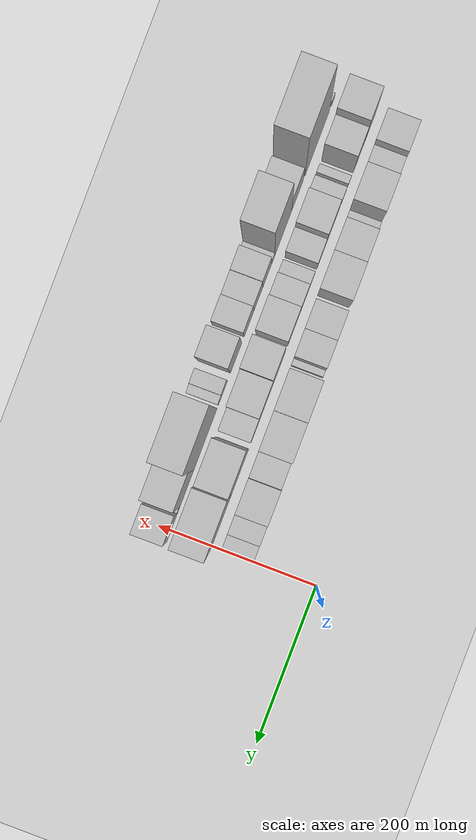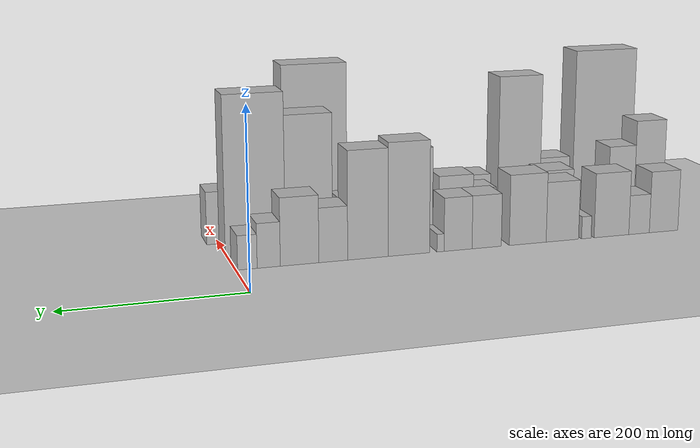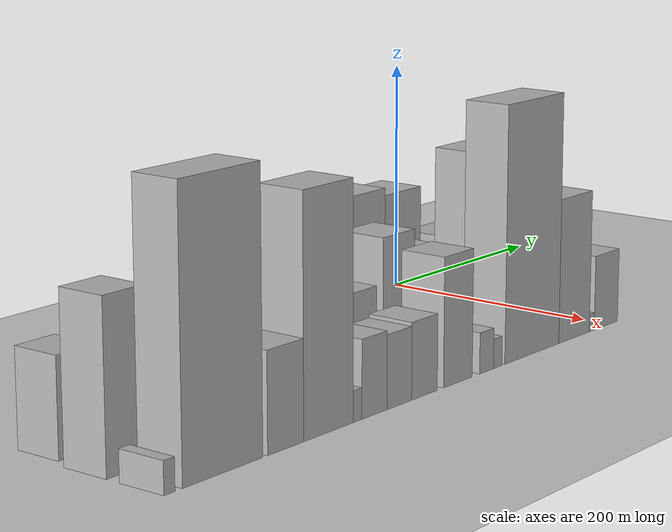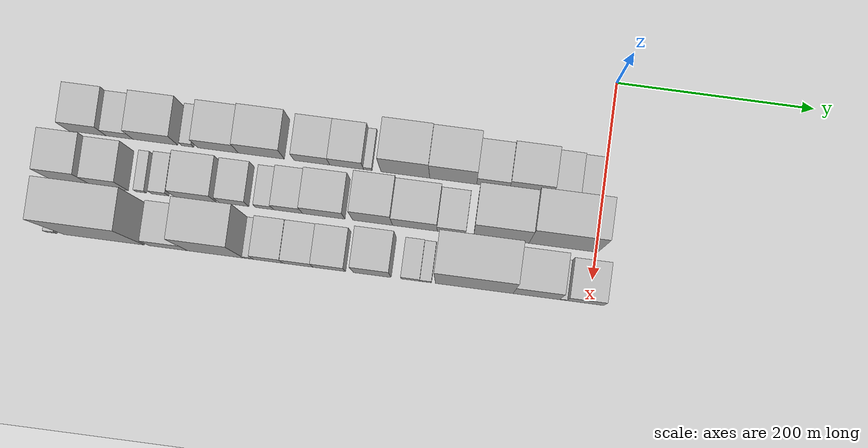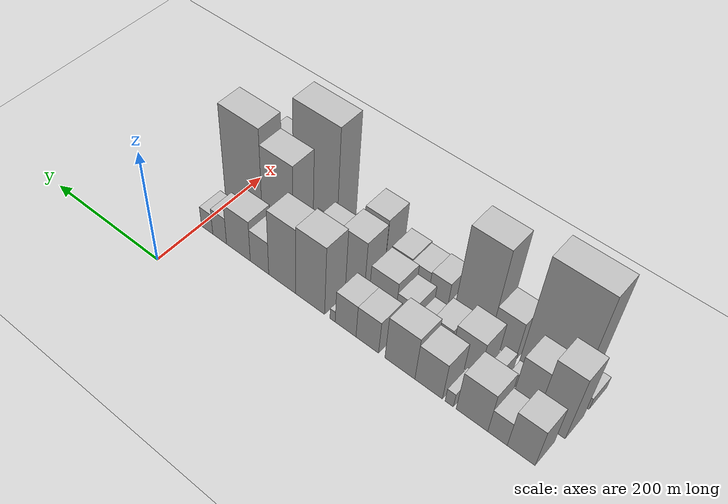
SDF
<sdf version="1.6">
 <world name="default">
  <include><name>ground_plane_1</name><uri>model://HANNAS_ground_plane</uri></include>
  <model name="building_1">
   <static>1</static>
   <pose>100.0000 -521.8874 0 0.000000 0.000000 0.000000</pose>
   <link name="link">
    <pose>0 0 37.50 0 0 0</pose>
    <collision name="collision"><geometry><box><size>40.0000 38.2253 75.0000</size></box></geometry></collision>
    <visual name="visual">
     <cast_shadows>0</cast_shadows>
     <geometry><box><size>40.0000 38.2253 75.0000</size></box></geometry>
     <material>
      <script>
       <uri>model://HANNAS_wall/materials/scripts</uri>
       <uri>model://HANNAS_wall/materials/textures</uri>
       <name>vrc/HANNAS_wall</name>
      </script>
     </material>
    </visual>
   </link>
  </model>
  <model name="building_2">
   <static>1</static>
   <pose>100.0000 -489.1310 0 0.000000 0.000000 0.000000</pose>
   <link name="link">
    <pose>0 0 24.00 0 0 0</pose>
    <collision name="collision"><geometry><box><size>40.0000 27.2876 48.0000</size></box></geometry></collision>
    <visual name="visual">
     <cast_shadows>0</cast_shadows>
     <geometry><box><size>40.0000 27.2876 48.0000</size></box></geometry>
     <material>
      <script>
       <uri>model://HANNAS_wall/materials/scripts</uri>
       <uri>model://HANNAS_wall/materials/textures</uri>
       <name>vrc/HANNAS_wall</name>
      </script>
     </material>
    </visual>
   </link>
  </model>
  <model name="building_3">
   <static>1</static>
   <pose>100.0000 -452.7695 0 0.000000 0.000000 0.000000</pose>
   <link name="link">
    <pose>0 0 39.00 0 0 0</pose>
    <collision name="collision"><geometry><box><size>40.0000 45.4354 78.0000</size></box></geometry></collision>
    <visual name="visual">
     <cast_shadows>0</cast_shadows>
     <geometry><box><size>40.0000 45.4354 78.0000</size></box></geometry>
     <material>
      <script>
       <uri>model://HANNAS_wall/materials/scripts</uri>
       <uri>model://HANNAS_wall/materials/textures</uri>
       <name>vrc/HANNAS_wall</name>
      </script>
     </material>
    </visual>
   </link>
  </model>
  <model name="building_4">
   <static>1</static>
   <pose>100.0000 -419.9362 0 0.000000 0.000000 0.000000</pose>
   <link name="link">
    <pose>0 0 13.50 0 0 0</pose>
    <collision name="collision"><geometry><box><size>40.0000 12.2310 27.0000</size></box></geometry></collision>
    <visual name="visual">
     <cast_shadows>0</cast_shadows>
     <geometry><box><size>40.0000 12.2310 27.0000</size></box></geometry>
     <material>
      <script>
       <uri>model://HANNAS_wall/materials/scripts</uri>
       <uri>model://HANNAS_wall/materials/textures</uri>
       <name>vrc/HANNAS_wall</name>
      </script>
     </material>
    </visual>
   </link>
  </model>
  <model name="building_5">
   <static>1</static>
   <pose>100.0000 -389.0975 0 0.000000 0.000000 0.000000</pose>
   <link name="link">
    <pose>0 0 36.00 0 0 0</pose>
    <collision name="collision"><geometry><box><size>40.0000 41.4465 72.0000</size></box></geometry></collision>
    <visual name="visual">
     <cast_shadows>0</cast_shadows>
     <geometry><box><size>40.0000 41.4465 72.0000</size></box></geometry>
     <material>
      <script>
       <uri>model://HANNAS_wall/materials/scripts</uri>
       <uri>model://HANNAS_wall/materials/textures</uri>
       <name>vrc/HANNAS_wall</name>
      </script>
     </material>
    </visual>
   </link>
  </model>
  <model name="building_6">
   <static>1</static>
   <pose>100.0000 -345.1683 0 0.000000 0.000000 0.000000</pose>
   <link name="link">
    <pose>0 0 42.00 0 0 0</pose>
    <collision name="collision"><geometry><box><size>40.0000 46.4119 84.0000</size></box></geometry></collision>
    <visual name="visual">
     <cast_shadows>0</cast_shadows>
     <geometry><box><size>40.0000 46.4119 84.0000</size></box></geometry>
     <material>
      <script>
       <uri>model://HANNAS_wall/materials/scripts</uri>
       <uri>model://HANNAS_wall/materials/textures</uri>
       <name>vrc/HANNAS_wall</name>
      </script>
     </material>
    </visual>
   </link>
  </model>
  <model name="building_7">
   <static>1</static>
   <pose>100.0000 -293.8474 0 0.000000 0.000000 0.000000</pose>
   <link name="link">
    <pose>0 0 31.50 0 0 0</pose>
    <collision name="collision"><geometry><box><size>40.0000 36.2299 63.0000</size></box></geometry></collision>
    <visual name="visual">
     <cast_shadows>0</cast_shadows>
     <geometry><box><size>40.0000 36.2299 63.0000</size></box></geometry>
     <material>
      <script>
       <uri>model://HANNAS_wall/materials/scripts</uri>
       <uri>model://HANNAS_wall/materials/textures</uri>
       <name>vrc/HANNAS_wall</name>
      </script>
     </material>
    </visual>
   </link>
  </model>
  <model name="building_8">
   <static>1</static>
   <pose>100.0000 -258.6366 0 0.000000 0.000000 0.000000</pose>
   <link name="link">
    <pose>0 0 31.50 0 0 0</pose>
    <collision name="collision"><geometry><box><size>40.0000 34.1916 63.0000</size></box></geometry></collision>
    <visual name="visual">
     <cast_shadows>0</cast_shadows>
     <geometry><box><size>40.0000 34.1916 63.0000</size></box></geometry>
     <material>
      <script>
       <uri>model://HANNAS_wall/materials/scripts</uri>
       <uri>model://HANNAS_wall/materials/textures</uri>
       <name>vrc/HANNAS_wall</name>
      </script>
     </material>
    </visual>
   </link>
  </model>
  <model name="building_9">
   <static>1</static>
   <pose>100.0000 -237.2392 0 0.000000 0.000000 0.000000</pose>
   <link name="link">
    <pose>0 0 10.50 0 0 0</pose>
    <collision name="collision"><geometry><box><size>40.0000 8.6033 21.0000</size></box></geometry></collision>
    <visual name="visual">
     <cast_shadows>0</cast_shadows>
     <geometry><box><size>40.0000 8.6033 21.0000</size></box></geometry>
     <material>
      <script>
       <uri>model://HANNAS_wall/materials/scripts</uri>
       <uri>model://HANNAS_wall/materials/textures</uri>
       <name>vrc/HANNAS_wall</name>
      </script>
     </material>
    </visual>
   </link>
  </model>
  <model name="building_10">
   <static>1</static>
   <pose>100.0000 -199.2815 0 0.000000 0.000000 0.000000</pose>
   <link name="link">
    <pose>0 0 66.00 0 0 0</pose>
    <collision name="collision"><geometry><box><size>40.0000 49.3121 132.0000</size></box></geometry></collision>
    <visual name="visual">
     <cast_shadows>0</cast_shadows>
     <geometry><box><size>40.0000 49.3121 132.0000</size></box></geometry>
     <material>
      <script>
       <uri>model://HANNAS_wall/materials/scripts</uri>
       <uri>model://HANNAS_wall/materials/textures</uri>
       <name>vrc/HANNAS_wall</name>
      </script>
     </material>
    </visual>
   </link>
  </model>
  <model name="building_11">
   <static>1</static>
   <pose>100.0000 -150.8150 0 0.000000 0.000000 0.000000</pose>
   <link name="link">
    <pose>0 0 63.00 0 0 0</pose>
    <collision name="collision"><geometry><box><size>40.0000 47.6210 126.0000</size></box></geometry></collision>
    <visual name="visual">
     <cast_shadows>0</cast_shadows>
     <geometry><box><size>40.0000 47.6210 126.0000</size></box></geometry>
     <material>
      <script>
       <uri>model://HANNAS_wall/materials/scripts</uri>
       <uri>model://HANNAS_wall/materials/textures</uri>
       <name>vrc/HANNAS_wall</name>
      </script>
     </material>
    </visual>
   </link>
  </model>
  <model name="building_12">
   <static>1</static>
   <pose>100.0000 -110.3735 0 0.000000 0.000000 0.000000</pose>
   <link name="link">
    <pose>0 0 31.50 0 0 0</pose>
    <collision name="collision"><geometry><box><size>40.0000 33.2620 63.0000</size></box></geometry></collision>
    <visual name="visual">
     <cast_shadows>0</cast_shadows>
     <geometry><box><size>40.0000 33.2620 63.0000</size></box></geometry>
     <material>
      <script>
       <uri>model://HANNAS_wall/materials/scripts</uri>
       <uri>model://HANNAS_wall/materials/textures</uri>
       <name>vrc/HANNAS_wall</name>
      </script>
     </material>
    </visual>
   </link>
  </model>
  <model name="building_13">
   <static>1</static>
   <pose>100.0000 -71.7717 0 0.000000 0.000000 0.000000</pose>
   <link name="link">
    <pose>0 0 39.00 0 0 0</pose>
    <collision name="collision"><geometry><box><size>40.0000 43.9417 78.0000</size></box></geometry></collision>
    <visual name="visual">
     <cast_shadows>0</cast_shadows>
     <geometry><box><size>40.0000 43.9417 78.0000</size></box></geometry>
     <material>
      <script>
       <uri>model://HANNAS_wall/materials/scripts</uri>
       <uri>model://HANNAS_wall/materials/textures</uri>
       <name>vrc/HANNAS_wall</name>
      </script>
     </material>
    </visual>
   </link>
  </model>
  <model name="building_14">
   <static>1</static>
   <pose>100.0000 -36.7767 0 0.000000 0.000000 0.000000</pose>
   <link name="link">
    <pose>0 0 25.50 0 0 0</pose>
    <collision name="collision"><geometry><box><size>40.0000 26.0483 51.0000</size></box></geometry></collision>
    <visual name="visual">
     <cast_shadows>0</cast_shadows>
     <geometry><box><size>40.0000 26.0483 51.0000</size></box></geometry>
     <material>
      <script>
       <uri>model://HANNAS_wall/materials/scripts</uri>
       <uri>model://HANNAS_wall/materials/textures</uri>
       <name>vrc/HANNAS_wall</name>
      </script>
     </material>
    </visual>
   </link>
  </model>
  <model name="building_15">
   <static>1</static>
   <pose>100.0000 -12.8435 0 0.000000 0.000000 0.000000</pose>
   <link name="link">
    <pose>0 0 19.50 0 0 0</pose>
    <collision name="collision"><geometry><box><size>40.0000 21.8180 39.0000</size></box></geometry></collision>
    <visual name="visual">
     <cast_shadows>0</cast_shadows>
     <geometry><box><size>40.0000 21.8180 39.0000</size></box></geometry>
     <material>
      <script>
       <uri>model://HANNAS_wall/materials/scripts</uri>
       <uri>model://HANNAS_wall/materials/textures</uri>
       <name>vrc/HANNAS_wall</name>
      </script>
     </material>
    </visual>
   </link>
  </model>
  <model name="building_32">
   <static>1</static>
   <pose>152.0000 -528.0277 0 0.000000 0.000000 0.000000</pose>
   <link name="link">
    <pose>0 0 63.00 0 0 0</pose>
    <collision name="collision"><geometry><box><size>40.0000 39.9446 126.0000</size></box></geometry></collision>
    <visual name="visual">
     <cast_shadows>0</cast_shadows>
     <geometry><box><size>40.0000 39.9446 126.0000</size></box></geometry>
     <material>
      <script>
       <uri>model://HANNAS_wall/materials/scripts</uri>
       <uri>model://HANNAS_wall/materials/textures</uri>
       <name>vrc/HANNAS_wall</name>
      </script>
     </material>
    </visual>
   </link>
  </model>
  <model name="building_33">
   <static>1</static>
   <pose>152.0000 -490.4714 0 0.000000 0.000000 0.000000</pose>
   <link name="link">
    <pose>0 0 48.00 0 0 0</pose>
    <collision name="collision"><geometry><box><size>40.0000 35.1679 96.0000</size></box></geometry></collision>
    <visual name="visual">
     <cast_shadows>0</cast_shadows>
     <geometry><box><size>40.0000 35.1679 96.0000</size></box></geometry>
     <material>
      <script>
       <uri>model://HANNAS_wall/materials/scripts</uri>
       <uri>model://HANNAS_wall/materials/textures</uri>
       <name>vrc/HANNAS_wall</name>
      </script>
     </material>
    </visual>
   </link>
  </model>
  <model name="building_34">
   <static>1</static>
   <pose>152.0000 -459.4915 0 0.000000 0.000000 0.000000</pose>
   <link name="link">
    <pose>0 0 12.00 0 0 0</pose>
    <collision name="collision"><geometry><box><size>40.0000 10.7919 24.0000</size></box></geometry></collision>
    <visual name="visual">
     <cast_shadows>0</cast_shadows>
     <geometry><box><size>40.0000 10.7919 24.0000</size></box></geometry>
     <material>
      <script>
       <uri>model://HANNAS_wall/materials/scripts</uri>
       <uri>model://HANNAS_wall/materials/textures</uri>
       <name>vrc/HANNAS_wall</name>
      </script>
     </material>
    </visual>
   </link>
  </model>
  <model name="building_35">
   <static>1</static>
   <pose>152.0000 -440.4224 0 0.000000 0.000000 0.000000</pose>
   <link name="link">
    <pose>0 0 16.50 0 0 0</pose>
    <collision name="collision"><geometry><box><size>40.0000 17.3464 33.0000</size></box></geometry></collision>
    <visual name="visual">
     <cast_shadows>0</cast_shadows>
     <geometry><box><size>40.0000 17.3464 33.0000</size></box></geometry>
     <material>
      <script>
       <uri>model://HANNAS_wall/materials/scripts</uri>
       <uri>model://HANNAS_wall/materials/textures</uri>
       <name>vrc/HANNAS_wall</name>
      </script>
     </material>
    </visual>
   </link>
  </model>
  <model name="building_36">
   <static>1</static>
   <pose>152.0000 -404.7076 0 0.000000 0.000000 0.000000</pose>
   <link name="link">
    <pose>0 0 36.00 0 0 0</pose>
    <collision name="collision"><geometry><box><size>40.0000 42.0833 72.0000</size></box></geometry></collision>
    <visual name="visual">
     <cast_shadows>0</cast_shadows>
     <geometry><box><size>40.0000 42.0833 72.0000</size></box></geometry>
     <material>
      <script>
       <uri>model://HANNAS_wall/materials/scripts</uri>
       <uri>model://HANNAS_wall/materials/textures</uri>
       <name>vrc/HANNAS_wall</name>
      </script>
     </material>
    </visual>
   </link>
  </model>
  <model name="building_37">
   <static>1</static>
   <pose>152.0000 -365.6714 0 0.000000 0.000000 0.000000</pose>
   <link name="link">
    <pose>0 0 28.50 0 0 0</pose>
    <collision name="collision"><geometry><box><size>40.0000 29.9892 57.0000</size></box></geometry></collision>
    <visual name="visual">
     <cast_shadows>0</cast_shadows>
     <geometry><box><size>40.0000 29.9892 57.0000</size></box></geometry>
     <material>
      <script>
       <uri>model://HANNAS_wall/materials/scripts</uri>
       <uri>model://HANNAS_wall/materials/textures</uri>
       <name>vrc/HANNAS_wall</name>
      </script>
     </material>
    </visual>
   </link>
  </model>
  <model name="building_38">
   <static>1</static>
   <pose>152.0000 -334.5236 0 0.000000 0.000000 0.000000</pose>
   <link name="link">
    <pose>0 0 18.00 0 0 0</pose>
    <collision name="collision"><geometry><box><size>40.0000 18.3064 36.0000</size></box></geometry></collision>
    <visual name="visual">
     <cast_shadows>0</cast_shadows>
     <geometry><box><size>40.0000 18.3064 36.0000</size></box></geometry>
     <material>
      <script>
       <uri>model://HANNAS_wall/materials/scripts</uri>
       <uri>model://HANNAS_wall/materials/textures</uri>
       <name>vrc/HANNAS_wall</name>
      </script>
     </material>
    </visual>
   </link>
  </model>
  <model name="building_39">
   <static>1</static>
   <pose>152.0000 -310.7501 0 0.000000 0.000000 0.000000</pose>
   <link name="link">
    <pose>0 0 28.50 0 0 0</pose>
    <collision name="collision"><geometry><box><size>40.0000 29.2405 57.0000</size></box></geometry></collision>
    <visual name="visual">
     <cast_shadows>0</cast_shadows>
     <geometry><box><size>40.0000 29.2405 57.0000</size></box></geometry>
     <material>
      <script>
       <uri>model://HANNAS_wall/materials/scripts</uri>
       <uri>model://HANNAS_wall/materials/textures</uri>
       <name>vrc/HANNAS_wall</name>
      </script>
     </material>
    </visual>
   </link>
  </model>
  <model name="building_40">
   <static>1</static>
   <pose>152.0000 -274.7697 0 0.000000 0.000000 0.000000</pose>
   <link name="link">
    <pose>0 0 37.50 0 0 0</pose>
    <collision name="collision"><geometry><box><size>40.0000 42.7202 75.0000</size></box></geometry></collision>
    <visual name="visual">
     <cast_shadows>0</cast_shadows>
     <geometry><box><size>40.0000 42.7202 75.0000</size></box></geometry>
     <material>
      <script>
       <uri>model://HANNAS_wall/materials/scripts</uri>
       <uri>model://HANNAS_wall/materials/textures</uri>
       <name>vrc/HANNAS_wall</name>
      </script>
     </material>
    </visual>
   </link>
  </model>
  <model name="building_41">
   <static>1</static>
   <pose>152.0000 -225.3345 0 0.000000 0.000000 0.000000</pose>
   <link name="link">
    <pose>0 0 55.50 0 0 0</pose>
    <collision name="collision"><geometry><box><size>40.0000 40.1503 111.0000</size></box></geometry></collision>
    <visual name="visual">
     <cast_shadows>0</cast_shadows>
     <geometry><box><size>40.0000 40.1503 111.0000</size></box></geometry>
     <material>
      <script>
       <uri>model://HANNAS_wall/materials/scripts</uri>
       <uri>model://HANNAS_wall/materials/textures</uri>
       <name>vrc/HANNAS_wall</name>
      </script>
     </material>
    </visual>
   </link>
  </model>
  <model name="building_42">
   <static>1</static>
   <pose>152.0000 -182.6976 0 0.000000 0.000000 0.000000</pose>
   <link name="link">
    <pose>0 0 45.00 0 0 0</pose>
    <collision name="collision"><geometry><box><size>40.0000 45.1234 90.0000</size></box></geometry></collision>
    <visual name="visual">
     <cast_shadows>0</cast_shadows>
     <geometry><box><size>40.0000 45.1234 90.0000</size></box></geometry>
     <material>
      <script>
       <uri>model://HANNAS_wall/materials/scripts</uri>
       <uri>model://HANNAS_wall/materials/textures</uri>
       <name>vrc/HANNAS_wall</name>
      </script>
     </material>
    </visual>
   </link>
  </model>
  <model name="building_43">
   <static>1</static>
   <pose>152.0000 -145.7477 0 0.000000 0.000000 0.000000</pose>
   <link name="link">
    <pose>0 0 28.50 0 0 0</pose>
    <collision name="collision"><geometry><box><size>40.0000 28.7765 57.0000</size></box></geometry></collision>
    <visual name="visual">
     <cast_shadows>0</cast_shadows>
     <geometry><box><size>40.0000 28.7765 57.0000</size></box></geometry>
     <material>
      <script>
       <uri>model://HANNAS_wall/materials/scripts</uri>
       <uri>model://HANNAS_wall/materials/textures</uri>
       <name>vrc/HANNAS_wall</name>
      </script>
     </material>
    </visual>
   </link>
  </model>
  <model name="building_44">
   <static>1</static>
   <pose>152.0000 -95.4365 0 0.000000 0.000000 0.000000</pose>
   <link name="link">
    <pose>0 0 79.50 0 0 0</pose>
    <collision name="collision"><geometry><box><size>40.0000 55.8458 159.0000</size></box></geometry></collision>
    <visual name="visual">
     <cast_shadows>0</cast_shadows>
     <geometry><box><size>40.0000 55.8458 159.0000</size></box></geometry>
     <material>
      <script>
       <uri>model://HANNAS_wall/materials/scripts</uri>
       <uri>model://HANNAS_wall/materials/textures</uri>
       <name>vrc/HANNAS_wall</name>
      </script>
     </material>
    </visual>
   </link>
  </model>
  <model name="building_45">
   <static>1</static>
   <pose>152.0000 -32.7193 0 0.000000 0.000000 0.000000</pose>
   <link name="link">
    <pose>0 0 93.00 0 0 0</pose>
    <collision name="collision"><geometry><box><size>40.0000 69.5886 186.0000</size></box></geometry></collision>
    <visual name="visual">
     <cast_shadows>0</cast_shadows>
     <geometry><box><size>40.0000 69.5886 186.0000</size></box></geometry>
     <material>
      <script>
       <uri>model://HANNAS_wall/materials/scripts</uri>
       <uri>model://HANNAS_wall/materials/textures</uri>
       <name>vrc/HANNAS_wall</name>
      </script>
     </material>
    </visual>
   </link>
  </model>
  <model name="building_59">
   <static>1</static>
   <pose>204.0000 -542.6308 0 0.000000 0.000000 0.000000</pose>
   <link name="link">
    <pose>0 0 12.00 0 0 0</pose>
    <collision name="collision"><geometry><box><size>40.0000 10.7384 24.0000</size></box></geometry></collision>
    <visual name="visual">
     <cast_shadows>0</cast_shadows>
     <geometry><box><size>40.0000 10.7384 24.0000</size></box></geometry>
     <material>
      <script>
       <uri>model://HANNAS_wall/materials/scripts</uri>
       <uri>model://HANNAS_wall/materials/textures</uri>
       <name>vrc/HANNAS_wall</name>
      </script>
     </material>
    </visual>
   </link>
  </model>
  <model name="building_60">
   <static>1</static>
   <pose>204.0000 -489.5837 0 0.000000 0.000000 0.000000</pose>
   <link name="link">
    <pose>0 0 103.50 0 0 0</pose>
    <collision name="collision"><geometry><box><size>40.0000 81.3557 207.0000</size></box></geometry></collision>
    <visual name="visual">
     <cast_shadows>0</cast_shadows>
     <geometry><box><size>40.0000 81.3557 207.0000</size></box></geometry>
     <material>
      <script>
       <uri>model://HANNAS_wall/materials/scripts</uri>
       <uri>model://HANNAS_wall/materials/textures</uri>
       <name>vrc/HANNAS_wall</name>
      </script>
     </material>
    </visual>
   </link>
  </model>
  <model name="building_61">
   <static>1</static>
   <pose>204.0000 -424.3254 0 0.000000 0.000000 0.000000</pose>
   <link name="link">
    <pose>0 0 37.50 0 0 0</pose>
    <collision name="collision"><geometry><box><size>40.0000 39.1609 75.0000</size></box></geometry></collision>
    <visual name="visual">
     <cast_shadows>0</cast_shadows>
     <geometry><box><size>40.0000 39.1609 75.0000</size></box></geometry>
     <material>
      <script>
       <uri>model://HANNAS_wall/materials/scripts</uri>
       <uri>model://HANNAS_wall/materials/textures</uri>
       <name>vrc/HANNAS_wall</name>
      </script>
     </material>
    </visual>
   </link>
  </model>
  <model name="building_62">
   <static>1</static>
   <pose>204.0000 -376.6164 0 0.000000 0.000000 0.000000</pose>
   <link name="link">
    <pose>0 0 90.00 0 0 0</pose>
    <collision name="collision"><geometry><box><size>40.0000 56.2571 180.0000</size></box></geometry></collision>
    <visual name="visual">
     <cast_shadows>0</cast_shadows>
     <geometry><box><size>40.0000 56.2571 180.0000</size></box></geometry>
     <material>
      <script>
       <uri>model://HANNAS_wall/materials/scripts</uri>
       <uri>model://HANNAS_wall/materials/textures</uri>
       <name>vrc/HANNAS_wall</name>
      </script>
     </material>
    </visual>
   </link>
  </model>
  <model name="building_63">
   <static>1</static>
   <pose>204.0000 -343.4911 0 0.000000 0.000000 0.000000</pose>
   <link name="link">
    <pose>0 0 12.00 0 0 0</pose>
    <collision name="collision"><geometry><box><size>40.0000 9.9936 24.0000</size></box></geometry></collision>
    <visual name="visual">
     <cast_shadows>0</cast_shadows>
     <geometry><box><size>40.0000 9.9936 24.0000</size></box></geometry>
     <material>
      <script>
       <uri>model://HANNAS_wall/materials/scripts</uri>
       <uri>model://HANNAS_wall/materials/textures</uri>
       <name>vrc/HANNAS_wall</name>
      </script>
     </material>
    </visual>
   </link>
  </model>
  <model name="building_64">
   <static>1</static>
   <pose>204.0000 -323.4847 0 0.000000 0.000000 0.000000</pose>
   <link name="link">
    <pose>0 0 30.00 0 0 0</pose>
    <collision name="collision"><geometry><box><size>40.0000 30.0192 60.0000</size></box></geometry></collision>
    <visual name="visual">
     <cast_shadows>0</cast_shadows>
     <geometry><box><size>40.0000 30.0192 60.0000</size></box></geometry>
     <material>
      <script>
       <uri>model://HANNAS_wall/materials/scripts</uri>
       <uri>model://HANNAS_wall/materials/textures</uri>
       <name>vrc/HANNAS_wall</name>
      </script>
     </material>
    </visual>
   </link>
  </model>
  <model name="building_65">
   <static>1</static>
   <pose>204.0000 -293.4481 0 0.000000 0.000000 0.000000</pose>
   <link name="link">
    <pose>0 0 28.50 0 0 0</pose>
    <collision name="collision"><geometry><box><size>40.0000 30.0540 57.0000</size></box></geometry></collision>
    <visual name="visual">
     <cast_shadows>0</cast_shadows>
     <geometry><box><size>40.0000 30.0540 57.0000</size></box></geometry>
     <material>
      <script>
       <uri>model://HANNAS_wall/materials/scripts</uri>
       <uri>model://HANNAS_wall/materials/textures</uri>
       <name>vrc/HANNAS_wall</name>
      </script>
     </material>
    </visual>
   </link>
  </model>
  <model name="building_66">
   <static>1</static>
   <pose>204.0000 -262.0273 0 0.000000 0.000000 0.000000</pose>
   <link name="link">
    <pose>0 0 30.00 0 0 0</pose>
    <collision name="collision"><geometry><box><size>40.0000 32.7877 60.0000</size></box></geometry></collision>
    <visual name="visual">
     <cast_shadows>0</cast_shadows>
     <geometry><box><size>40.0000 32.7877 60.0000</size></box></geometry>
     <material>
      <script>
       <uri>model://HANNAS_wall/materials/scripts</uri>
       <uri>model://HANNAS_wall/materials/textures</uri>
       <name>vrc/HANNAS_wall</name>
      </script>
     </material>
    </visual>
   </link>
  </model>
  <model name="building_67">
   <static>1</static>
   <pose>204.0000 -218.6736 0 0.000000 0.000000 0.000000</pose>
   <link name="link">
    <pose>0 0 51.00 0 0 0</pose>
    <collision name="collision"><geometry><box><size>40.0000 37.9196 102.0000</size></box></geometry></collision>
    <visual name="visual">
     <cast_shadows>0</cast_shadows>
     <geometry><box><size>40.0000 37.9196 102.0000</size></box></geometry>
     <material>
      <script>
       <uri>model://HANNAS_wall/materials/scripts</uri>
       <uri>model://HANNAS_wall/materials/textures</uri>
       <name>vrc/HANNAS_wall</name>
      </script>
     </material>
    </visual>
   </link>
  </model>
  <model name="building_68">
   <static>1</static>
   <pose>204.0000 -180.1543 0 0.000000 0.000000 0.000000</pose>
   <link name="link">
    <pose>0 0 16.50 0 0 0</pose>
    <collision name="collision"><geometry><box><size>40.0000 19.1190 33.0000</size></box></geometry></collision>
    <visual name="visual">
     <cast_shadows>0</cast_shadows>
     <geometry><box><size>40.0000 19.1190 33.0000</size></box></geometry>
     <material>
      <script>
       <uri>model://HANNAS_wall/materials/scripts</uri>
       <uri>model://HANNAS_wall/materials/textures</uri>
       <name>vrc/HANNAS_wall</name>
      </script>
     </material>
    </visual>
   </link>
  </model>
  <model name="building_69">
   <static>1</static>
   <pose>204.0000 -164.8071 0 0.000000 0.000000 0.000000</pose>
   <link name="link">
    <pose>0 0 12.00 0 0 0</pose>
    <collision name="collision"><geometry><box><size>40.0000 11.5753 24.0000</size></box></geometry></collision>
    <visual name="visual">
     <cast_shadows>0</cast_shadows>
     <geometry><box><size>40.0000 11.5753 24.0000</size></box></geometry>
     <material>
      <script>
       <uri>model://HANNAS_wall/materials/scripts</uri>
       <uri>model://HANNAS_wall/materials/textures</uri>
       <name>vrc/HANNAS_wall</name>
      </script>
     </material>
    </visual>
   </link>
  </model>
  <model name="building_70">
   <static>1</static>
   <pose>204.0000 -115.9386 0 0.000000 0.000000 0.000000</pose>
   <link name="link">
    <pose>0 0 103.50 0 0 0</pose>
    <collision name="collision"><geometry><box><size>40.0000 78.1618 207.0000</size></box></geometry></collision>
    <visual name="visual">
     <cast_shadows>0</cast_shadows>
     <geometry><box><size>40.0000 78.1618 207.0000</size></box></geometry>
     <material>
      <script>
       <uri>model://HANNAS_wall/materials/scripts</uri>
       <uri>model://HANNAS_wall/materials/textures</uri>
       <name>vrc/HANNAS_wall</name>
      </script>
     </material>
    </visual>
   </link>
  </model>
  <model name="building_71">
   <static>1</static>
   <pose>204.0000 -53.5246 0 0.000000 0.000000 0.000000</pose>
   <link name="link">
    <pose>0 0 60.00 0 0 0</pose>
    <collision name="collision"><geometry><box><size>40.0000 46.6663 120.0000</size></box></geometry></collision>
    <visual name="visual">
     <cast_shadows>0</cast_shadows>
     <geometry><box><size>40.0000 46.6663 120.0000</size></box></geometry>
     <material>
      <script>
       <uri>model://HANNAS_wall/materials/scripts</uri>
       <uri>model://HANNAS_wall/materials/textures</uri>
       <name>vrc/HANNAS_wall</name>
      </script>
     </material>
    </visual>
   </link>
  </model>
  <model name="building_72">
   <static>1</static>
   <pose>204.0000 -26.4533 0 0.000000 0.000000 0.000000</pose>
   <link name="link">
    <pose>0 0 7.50 0 0 0</pose>
    <collision name="collision"><geometry><box><size>40.0000 7.4762 15.0000</size></box></geometry></collision>
    <visual name="visual">
     <cast_shadows>0</cast_shadows>
     <geometry><box><size>40.0000 7.4762 15.0000</size></box></geometry>
     <material>
      <script>
       <uri>model://HANNAS_wall/materials/scripts</uri>
       <uri>model://HANNAS_wall/materials/textures</uri>
       <name>vrc/HANNAS_wall</name>
      </script>
     </material>
    </visual>
   </link>
  </model>
  <model name="building_73">
   <static>1</static>
   <pose>204.0000 -4.1762 0 0.000000 0.000000 0.000000</pose>
   <link name="link">
    <pose>0 0 31.50 0 0 0</pose>
    <collision name="collision"><geometry><box><size>40.0000 37.0781 63.0000</size></box></geometry></collision>
    <visual name="visual">
     <cast_shadows>0</cast_shadows>
     <geometry><box><size>40.0000 37.0781 63.0000</size></box></geometry>
     <material>
      <script>
       <uri>model://HANNAS_wall/materials/scripts</uri>
       <uri>model://HANNAS_wall/materials/textures</uri>
       <name>vrc/HANNAS_wall</name>
      </script>
     </material>
    </visual>
   </link>
  </model>
 </world>
</sdf>
